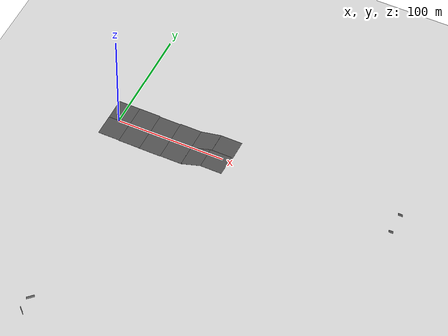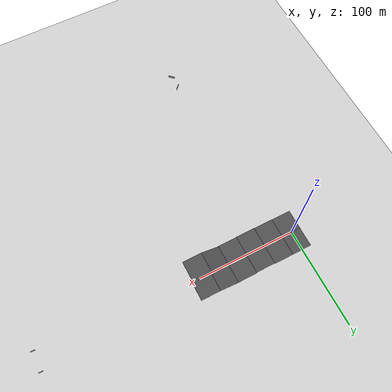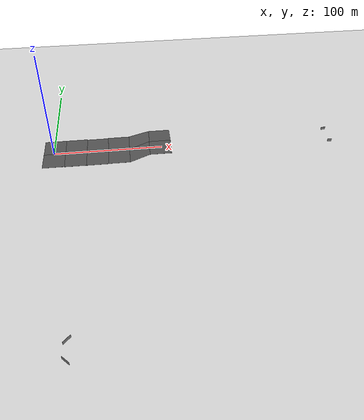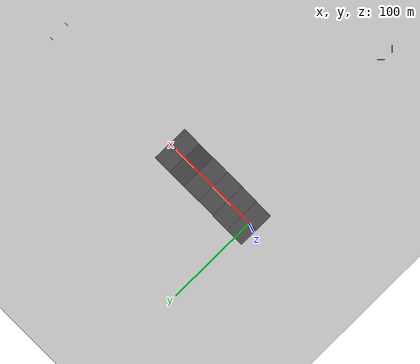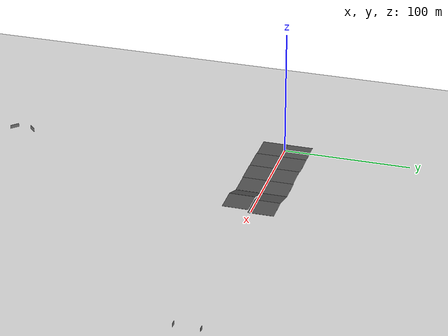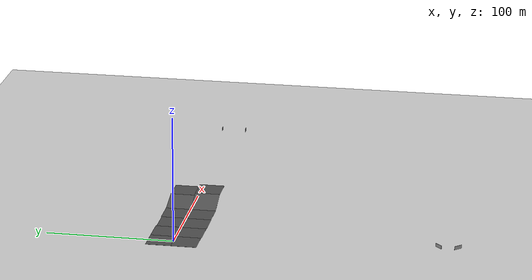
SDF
<sdf version="1.7">
 <world name="default">
  <model name="ground_plane">
   <static>1</static>
   <link name="link">
    <collision name="collision">
     <geometry><plane><normal>0 0 1</normal><size>100 100</size></plane></geometry>
     <surface><friction><ode><mu>100</mu><mu2>50</mu2></ode></friction></surface>
    </collision>
    <visual name="visual">
     <cast_shadows>0</cast_shadows>
     <geometry><plane><normal>0 0 1</normal><size>100 100</size></plane></geometry>
     <material>
      <script><uri>file://media/materials/scripts/gazebo.material</uri><name>Gazebo/Grey</name></script>
     </material>
    </visual>
   </link>
  </model>
  <model name="grey_wall_93">
   <static>1</static>
   <link name="link">
    <pose>262 10 1.4 0 -0 0</pose>
    <collision name="collision"><geometry><box><size>4 0.2 2.8</size></box></geometry></collision>
    <visual name="visual">
     <cast_shadows>0</cast_shadows>
     <geometry><box><size>4 0.2 2.8</size></box></geometry>
     <material>
      <script>
       <uri>model://grey_wall/materials/scripts</uri>
       <uri>model://grey_wall/materials/textures</uri>
       <name>vrc/grey_wall</name>
      </script>
     </material>
    </visual>
   </link>
  </model>
  <model name="grey_wall_94">
   <static>1</static>
   <link name="link">
    <pose>262 -10 1.4 0 -0 0</pose>
    <collision name="collision"><geometry><box><size>4 0.2 2.8</size></box></geometry></collision>
    <visual name="visual">
     <cast_shadows>0</cast_shadows>
     <geometry><box><size>4 0.2 2.8</size></box></geometry>
     <material>
      <script>
       <uri>model://grey_wall/materials/scripts</uri>
       <uri>model://grey_wall/materials/textures</uri>
       <name>vrc/grey_wall</name>
      </script>
     </material>
    </visual>
   </link>
  </model>
  <model name="grey_wall_95">
   <static>1</static>
   <link name="link">
    <pose>22.5 -202.5 1.4 0 -0 0.785398</pose>
    <collision name="collision"><geometry><box><size>7.07107 0.2 2.8</size></box></geometry></collision>
    <visual name="visual">
     <cast_shadows>0</cast_shadows>
     <geometry><box><size>7.07107 0.2 2.8</size></box></geometry>
     <material>
      <script>
       <uri>model://grey_wall/materials/scripts</uri>
       <uri>model://grey_wall/materials/textures</uri>
       <name>vrc/grey_wall</name>
      </script>
     </material>
    </visual>
   </link>
  </model>
  <model name="grey_wall_96">
   <static>1</static>
   <link name="link">
    <pose>22.5 -217.5 1.4 0 0 -0.785398</pose>
    <collision name="collision"><geometry><box><size>7.07107 0.2 2.8</size></box></geometry></collision>
    <visual name="visual">
     <cast_shadows>0</cast_shadows>
     <geometry><box><size>7.07107 0.2 2.8</size></box></geometry>
     <material>
      <script>
       <uri>model://grey_wall/materials/scripts</uri>
       <uri>model://grey_wall/materials/textures</uri>
       <name>vrc/grey_wall</name>
      </script>
     </material>
    </visual>
   </link>
  </model>
  <model name="asphalt_plane">
   <static>1</static>
   <link name="link">
    <collision name="collision"><geometry><box><size>20 20 0.1</size></box></geometry></collision>
    <visual name="visual">
     <cast_shadows>0</cast_shadows>
     <geometry><box><size>20 20 0.1</size></box></geometry>
     <material>
      <script>
       <uri>model://asphalt_plane/materials/scripts</uri>
       <uri>model://asphalt_plane/materials/textures</uri>
       <name>vrc/asphalt</name>
      </script>
     </material>
    </visual>
   </link>
   <pose>60.0976 9.97036 0 0 -0 0</pose>
  </model>
  <model name="asphalt_plane_0">
   <static>1</static>
   <link name="link">
    <collision name="collision"><geometry><box><size>20 20 0.1</size></box></geometry></collision>
    <visual name="visual">
     <cast_shadows>0</cast_shadows>
     <geometry><box><size>20 20 0.1</size></box></geometry>
     <material>
      <script>
       <uri>model://asphalt_plane/materials/scripts</uri>
       <uri>model://asphalt_plane/materials/textures</uri>
       <name>vrc/asphalt</name>
      </script>
     </material>
    </visual>
   </link>
   <pose>59.976 -10.0158 0 0 -0 0</pose>
  </model>
  <model name="asphalt_plane_1">
   <static>1</static>
   <link name="link">
    <collision name="collision"><geometry><box><size>20 20 0.1</size></box></geometry></collision>
    <visual name="visual">
     <cast_shadows>0</cast_shadows>
     <geometry><box><size>20 20 0.1</size></box></geometry>
     <material>
      <script>
       <uri>model://asphalt_plane/materials/scripts</uri>
       <uri>model://asphalt_plane/materials/textures</uri>
       <name>vrc/asphalt</name>
      </script>
     </material>
    </visual>
   </link>
   <pose>79.3064 -9.85956 3.41259 0 -0.370883 0</pose>
  </model>
  <model name="asphalt_plane_2">
   <static>1</static>
   <link name="link">
    <collision name="collision"><geometry><box><size>20 20 0.1</size></box></geometry></collision>
    <visual name="visual">
     <cast_shadows>0</cast_shadows>
     <geometry><box><size>20 20 0.1</size></box></geometry>
     <material>
      <script>
       <uri>model://asphalt_plane/materials/scripts</uri>
       <uri>model://asphalt_plane/materials/textures</uri>
       <name>vrc/asphalt</name>
      </script>
     </material>
    </visual>
   </link>
   <pose>98.5295 -9.86338 7.01102 0 -0 0</pose>
  </model>
  <model name="asphalt_plane_3">
   <static>1</static>
   <link name="link">
    <collision name="collision"><geometry><box><size>20 20 0.1</size></box></geometry></collision>
    <visual name="visual">
     <cast_shadows>0</cast_shadows>
     <geometry><box><size>20 20 0.1</size></box></geometry>
     <material>
      <script>
       <uri>model://asphalt_plane/materials/scripts</uri>
       <uri>model://asphalt_plane/materials/textures</uri>
       <name>vrc/asphalt</name>
      </script>
     </material>
    </visual>
   </link>
   <pose>79.5114 10.0151 2.42216 0 -0.2492 0</pose>
  </model>
  <model name="asphalt_plane_4">
   <static>1</static>
   <link name="link">
    <collision name="collision"><geometry><box><size>20 20 0.1</size></box></geometry></collision>
    <visual name="visual">
     <cast_shadows>0</cast_shadows>
     <geometry><box><size>20 20 0.1</size></box></geometry>
     <material>
      <script>
       <uri>model://asphalt_plane/materials/scripts</uri>
       <uri>model://asphalt_plane/materials/textures</uri>
       <name>vrc/asphalt</name>
      </script>
     </material>
    </visual>
   </link>
   <pose>99.212 9.9309 4.89754 0 -0 0</pose>
  </model>
  <model name="asphalt_plane_5">
   <static>1</static>
   <link name="link">
    <collision name="collision"><geometry><box><size>20 20 0.1</size></box></geometry></collision>
    <visual name="visual">
     <cast_shadows>0</cast_shadows>
     <geometry><box><size>20 20 0.1</size></box></geometry>
     <material>
      <script>
       <uri>model://asphalt_plane/materials/scripts</uri>
       <uri>model://asphalt_plane/materials/textures</uri>
       <name>vrc/asphalt</name>
      </script>
     </material>
    </visual>
   </link>
   <pose>40.0372 -10.261 0 0 -0 0</pose>
  </model>
  <model name="asphalt_plane_6">
   <static>1</static>
   <link name="link">
    <collision name="collision"><geometry><box><size>20 20 0.1</size></box></geometry></collision>
    <visual name="visual">
     <cast_shadows>0</cast_shadows>
     <geometry><box><size>20 20 0.1</size></box></geometry>
     <material>
      <script>
       <uri>model://asphalt_plane/materials/scripts</uri>
       <uri>model://asphalt_plane/materials/textures</uri>
       <name>vrc/asphalt</name>
      </script>
     </material>
    </visual>
   </link>
   <pose>20.1034 -10.1121 0 0 -0 0</pose>
  </model>
  <model name="asphalt_plane_7">
   <static>1</static>
   <link name="link">
    <collision name="collision"><geometry><box><size>20 20 0.1</size></box></geometry></collision>
    <visual name="visual">
     <cast_shadows>0</cast_shadows>
     <geometry><box><size>20 20 0.1</size></box></geometry>
     <material>
      <script>
       <uri>model://asphalt_plane/materials/scripts</uri>
       <uri>model://asphalt_plane/materials/textures</uri>
       <name>vrc/asphalt</name>
      </script>
     </material>
    </visual>
   </link>
   <pose>0.161654 -9.75123 0 0 -0 0</pose>
  </model>
  <model name="asphalt_plane_8">
   <static>1</static>
   <link name="link">
    <collision name="collision"><geometry><box><size>20 20 0.1</size></box></geometry></collision>
    <visual name="visual">
     <cast_shadows>0</cast_shadows>
     <geometry><box><size>20 20 0.1</size></box></geometry>
     <material>
      <script>
       <uri>model://asphalt_plane/materials/scripts</uri>
       <uri>model://asphalt_plane/materials/textures</uri>
       <name>vrc/asphalt</name>
      </script>
     </material>
    </visual>
   </link>
   <pose>40.173 9.46815 0 0 -0 0</pose>
  </model>
  <model name="asphalt_plane_9">
   <static>1</static>
   <link name="link">
    <collision name="collision"><geometry><box><size>20 20 0.1</size></box></geometry></collision>
    <visual name="visual">
     <cast_shadows>0</cast_shadows>
     <geometry><box><size>20 20 0.1</size></box></geometry>
     <material>
      <script>
       <uri>model://asphalt_plane/materials/scripts</uri>
       <uri>model://asphalt_plane/materials/textures</uri>
       <name>vrc/asphalt</name>
      </script>
     </material>
    </visual>
   </link>
   <pose>20.2593 10.0747 0 0 -0 0</pose>
  </model>
  <model name="asphalt_plane_10">
   <static>1</static>
   <link name="link">
    <collision name="collision"><geometry><box><size>20 20 0.1</size></box></geometry></collision>
    <visual name="visual">
     <cast_shadows>0</cast_shadows>
     <geometry><box><size>20 20 0.1</size></box></geometry>
     <material>
      <script>
       <uri>model://asphalt_plane/materials/scripts</uri>
       <uri>model://asphalt_plane/materials/textures</uri>
       <name>vrc/asphalt</name>
      </script>
     </material>
    </visual>
   </link>
   <pose>0.27256 10.0591 0 0 -0 0</pose>
  </model>
 </world>
</sdf>
